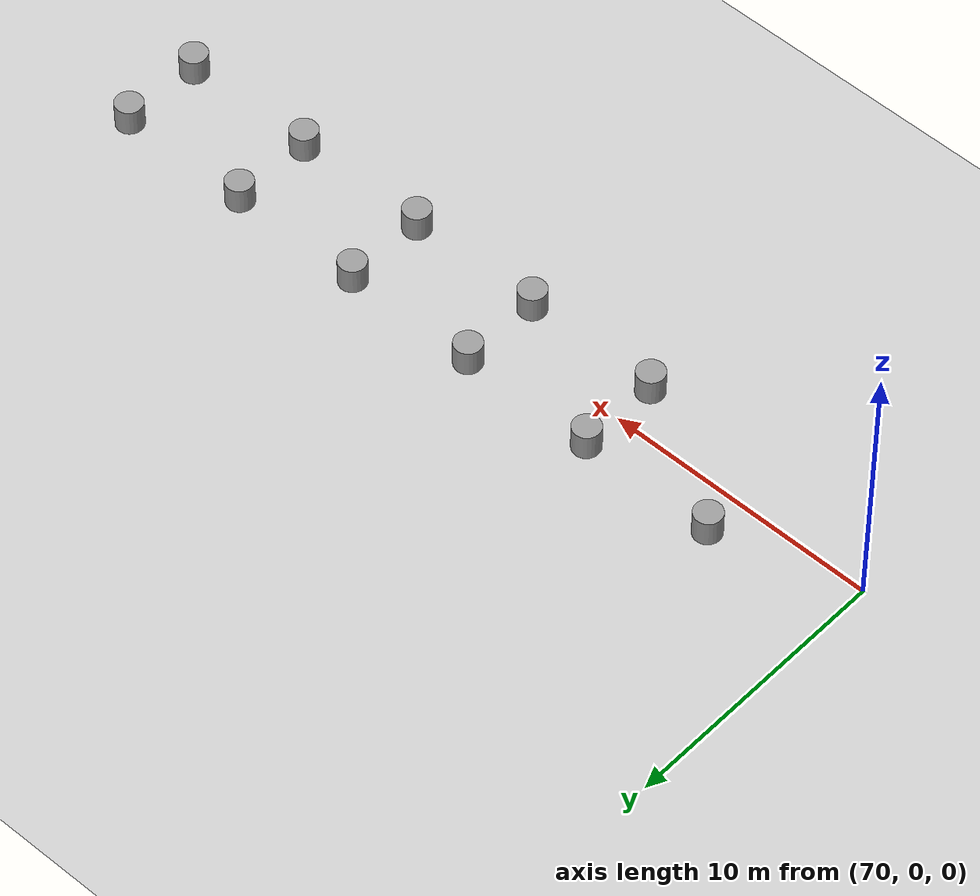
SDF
<sdf version="1.7">
 <world name="default">
  <model name="ground_plane">
   <static>1</static>
   <link name="link">
    <collision name="collision">
     <geometry><plane><normal>0 0 1</normal><size>100 100</size></plane></geometry>
     <surface>
      <contact><collide_bitmask>65535</collide_bitmask></contact>
      <friction><ode><mu>100</mu><mu2>50</mu2></ode></friction>
     </surface>
    </collision>
    <visual name="visual">
     <cast_shadows>0</cast_shadows>
     <geometry><plane><normal>0 0 1</normal><size>100 100</size></plane></geometry>
     <material>
      <script><uri>file://media/materials/scripts/gazebo.material</uri><name>Gazebo/Grey</name></script>
     </material>
    </visual>
   </link>
  </model>
  <model name="unit_cylinder_clone_14">
   <pose>80 -1.5 0.5 0 -0 0</pose>
   <link name="link">
    <inertial>
     <mass>1</mass>
     <inertia><ixx>0.145833</ixx><ixy>0</ixy><ixz>0</ixz><iyy>0.145833</iyy><iyz>0</iyz><izz>0.125</izz></inertia>
    </inertial>
    <collision name="collision">
     <geometry><cylinder><radius>0.5</radius><length>1</length></cylinder></geometry>
    </collision>
    <visual name="visual">
     <geometry><cylinder><radius>0.5</radius><length>1</length></cylinder></geometry>
     <material>
      <script><name>Gazebo/Grey</name><uri>file://media/materials/scripts/gazebo.material</uri></script>
     </material>
    </visual>
   </link>
  </model>
  <model name="unit_cylinder_clone_15">
   <pose>85 -1.5 0.499997 3e-06 1e-06 -0</pose>
   <link name="link">
    <inertial>
     <mass>1</mass>
     <inertia><ixx>0.145833</ixx><ixy>0</ixy><ixz>0</ixz><iyy>0.145833</iyy><iyz>0</iyz><izz>0.125</izz></inertia>
    </inertial>
    <collision name="collision">
     <geometry><cylinder><radius>0.5</radius><length>1</length></cylinder></geometry>
    </collision>
    <visual name="visual">
     <geometry><cylinder><radius>0.5</radius><length>1</length></cylinder></geometry>
     <material>
      <script><name>Gazebo/Grey</name><uri>file://media/materials/scripts/gazebo.material</uri></script>
     </material>
    </visual>
   </link>
  </model>
  <model name="unit_cylinder_clone_16">
   <pose>90 -1.5 0.5 0 -0 0</pose>
   <link name="link">
    <inertial>
     <mass>1</mass>
     <inertia><ixx>0.145833</ixx><ixy>0</ixy><ixz>0</ixz><iyy>0.145833</iyy><iyz>0</iyz><izz>0.125</izz></inertia>
    </inertial>
    <collision name="collision">
     <geometry><cylinder><radius>0.5</radius><length>1</length></cylinder></geometry>
    </collision>
    <visual name="visual">
     <geometry><cylinder><radius>0.5</radius><length>1</length></cylinder></geometry>
     <material>
      <script><name>Gazebo/Grey</name><uri>file://media/materials/scripts/gazebo.material</uri></script>
     </material>
    </visual>
   </link>
  </model>
  <model name="unit_cylinder_clone_17">
   <pose>95 -1.5 0.499994 -4e-06 -2e-06 -0</pose>
   <link name="link">
    <inertial>
     <mass>1</mass>
     <inertia><ixx>0.145833</ixx><ixy>0</ixy><ixz>0</ixz><iyy>0.145833</iyy><iyz>0</iyz><izz>0.125</izz></inertia>
    </inertial>
    <collision name="collision">
     <geometry><cylinder><radius>0.5</radius><length>1</length></cylinder></geometry>
    </collision>
    <visual name="visual">
     <geometry><cylinder><radius>0.5</radius><length>1</length></cylinder></geometry>
     <material>
      <script><name>Gazebo/Grey</name><uri>file://media/materials/scripts/gazebo.material</uri></script>
     </material>
    </visual>
   </link>
  </model>
  <model name="unit_cylinder_clone_31">
   <pose>100 -1.5 0.499996 3e-06 1e-06 -0</pose>
   <link name="link">
    <inertial>
     <mass>1</mass>
     <inertia><ixx>0.145833</ixx><ixy>0</ixy><ixz>0</ixz><iyy>0.145833</iyy><iyz>0</iyz><izz>0.125</izz></inertia>
    </inertial>
    <collision name="collision">
     <geometry><cylinder><radius>0.5</radius><length>1</length></cylinder></geometry>
    </collision>
    <visual name="visual">
     <geometry><cylinder><radius>0.5</radius><length>1</length></cylinder></geometry>
     <material>
      <script><name>Gazebo/Grey</name><uri>file://media/materials/scripts/gazebo.material</uri></script>
     </material>
    </visual>
   </link>
  </model>
  <model name="unit_cylinder_clone_34">
   <pose>75 1.5 0.499991 -0 -0 -0</pose>
   <link name="link">
    <inertial>
     <mass>1</mass>
     <inertia><ixx>0.145833</ixx><ixy>0</ixy><ixz>0</ixz><iyy>0.145833</iyy><iyz>0</iyz><izz>0.125</izz></inertia>
    </inertial>
    <collision name="collision">
     <geometry><cylinder><radius>0.5</radius><length>1</length></cylinder></geometry>
    </collision>
    <visual name="visual">
     <geometry><cylinder><radius>0.5</radius><length>1</length></cylinder></geometry>
     <material>
      <script><name>Gazebo/Grey</name><uri>file://media/materials/scripts/gazebo.material</uri></script>
     </material>
    </visual>
   </link>
  </model>
  <model name="unit_cylinder_clone_35">
   <pose>80 1.5 0.499997 3e-06 -3e-06 0</pose>
   <link name="link">
    <inertial>
     <mass>1</mass>
     <inertia><ixx>0.145833</ixx><ixy>0</ixy><ixz>0</ixz><iyy>0.145833</iyy><iyz>0</iyz><izz>0.125</izz></inertia>
    </inertial>
    <collision name="collision">
     <geometry><cylinder><radius>0.5</radius><length>1</length></cylinder></geometry>
    </collision>
    <visual name="visual">
     <geometry><cylinder><radius>0.5</radius><length>1</length></cylinder></geometry>
     <material>
      <script><name>Gazebo/Grey</name><uri>file://media/materials/scripts/gazebo.material</uri></script>
     </material>
    </visual>
   </link>
  </model>
  <model name="unit_cylinder_clone_36">
   <pose>85 1.5 0.499992 -3e-06 4e-06 0</pose>
   <link name="link">
    <inertial>
     <mass>1</mass>
     <inertia><ixx>0.145833</ixx><ixy>0</ixy><ixz>0</ixz><iyy>0.145833</iyy><iyz>0</iyz><izz>0.125</izz></inertia>
    </inertial>
    <collision name="collision">
     <geometry><cylinder><radius>0.5</radius><length>1</length></cylinder></geometry>
    </collision>
    <visual name="visual">
     <geometry><cylinder><radius>0.5</radius><length>1</length></cylinder></geometry>
     <material>
      <script><name>Gazebo/Grey</name><uri>file://media/materials/scripts/gazebo.material</uri></script>
     </material>
    </visual>
   </link>
  </model>
  <model name="unit_cylinder_clone_37">
   <pose>90 1.5 0.499991 -0 -0 -0</pose>
   <link name="link">
    <inertial>
     <mass>1</mass>
     <inertia><ixx>0.145833</ixx><ixy>0</ixy><ixz>0</ixz><iyy>0.145833</iyy><iyz>0</iyz><izz>0.125</izz></inertia>
    </inertial>
    <collision name="collision">
     <geometry><cylinder><radius>0.5</radius><length>1</length></cylinder></geometry>
    </collision>
    <visual name="visual">
     <geometry><cylinder><radius>0.5</radius><length>1</length></cylinder></geometry>
     <material>
      <script><name>Gazebo/Grey</name><uri>file://media/materials/scripts/gazebo.material</uri></script>
     </material>
    </visual>
   </link>
  </model>
  <model name="unit_cylinder_0">
   <pose>95 1.5 0.499997 4e-06 3e-06 -0</pose>
   <link name="link">
    <inertial>
     <mass>1</mass>
     <inertia><ixx>0.145833</ixx><ixy>0</ixy><ixz>0</ixz><iyy>0.145833</iyy><iyz>0</iyz><izz>0.125</izz></inertia>
    </inertial>
    <collision name="collision">
     <geometry><cylinder><radius>0.5</radius><length>1</length></cylinder></geometry>
    </collision>
    <visual name="visual">
     <geometry><cylinder><radius>0.5</radius><length>1</length></cylinder></geometry>
     <material>
      <script><name>Gazebo/Grey</name><uri>file://media/materials/scripts/gazebo.material</uri></script>
     </material>
    </visual>
   </link>
  </model>
  <model name="unit_cylinder_1">
   <pose>100 1.5 0.499991 -0 -0 -0</pose>
   <link name="link">
    <inertial>
     <mass>1</mass>
     <inertia><ixx>0.145833</ixx><ixy>0</ixy><ixz>0</ixz><iyy>0.145833</iyy><iyz>0</iyz><izz>0.125</izz></inertia>
    </inertial>
    <collision name="collision">
     <geometry><cylinder><radius>0.5</radius><length>1</length></cylinder></geometry>
    </collision>
    <visual name="visual">
     <geometry><cylinder><radius>0.5</radius><length>1</length></cylinder></geometry>
     <material>
      <script><name>Gazebo/Grey</name><uri>file://media/materials/scripts/gazebo.material</uri></script>
     </material>
    </visual>
   </link>
  </model>
 </world>
</sdf>
